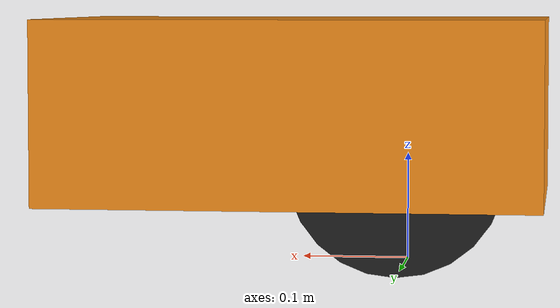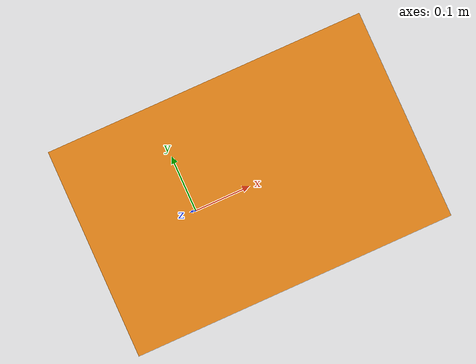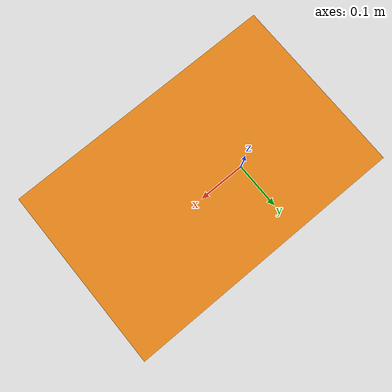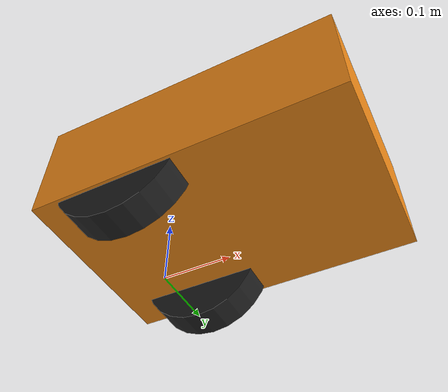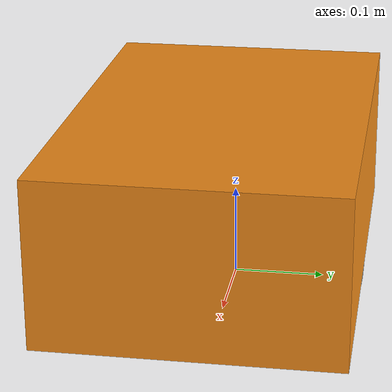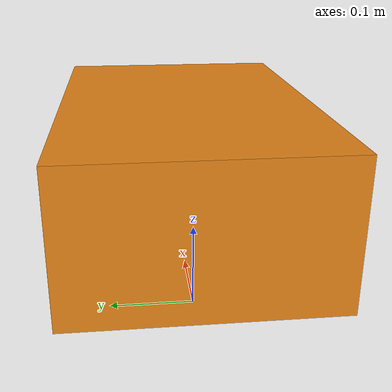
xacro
<?xml version="1.0"?>
<robot xmlns:xacro="http://www.ros.org/wiki/xacro" name="diffdrive_robot">
  <xacro:arg name="use_sim" default="false" />
  <xacro:arg name="use_fake_hardware" default="false" />
  <xacro:arg name="fake_sensor_commands" default="false" />
  <xacro:arg name="prefix" default="" />

  <xacro:include filename="$(find rosbot_description)/urdf/rosbot.urdf.xacro" />
  <xacro:include filename="$(find rosbot_description)/gazebo/rosbot.gazebo.xacro" />
  <xacro:include filename="$(find rosbot_description)/gazebo/rosbot.materials.xacro" />
  <xacro:include filename="$(find rosbot_description)/ros2_control/rosbot_system.ros2_control.xacro" />

  <xacro:rosbot prefix="$(arg prefix)" />
  <xacro:rosbot_gazebo prefix="$(arg prefix)" />
  <xacro:rosbot_system name="RosbotSystem" prefix="$(arg prefix)" use_fake_hardware="$(arg use_fake_hardware)" fake_sensor_commands="$(arg fake_sensor_commands)"/>

</robot>

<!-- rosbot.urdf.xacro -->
<!-- TODO add name here? -->
<robot xmlns:xacro="http://www.ros.org/wiki/xacro">

  <xacro:macro name="rosbot" params="prefix">

    <!-- Constants for robot dimensions -->
    <xacro:property name="PI" value="3.1415926535897931"/>
    <xacro:property name="base_mass" value="6.0" />

    <xacro:property name="body_width" value="0.46" />
    <xacro:property name="body_length" value="0.3" />
    <xacro:property name="body_height" value="0.17" />

    <xacro:property name="lidar_width" value="0.055" />
    <xacro:property name="lidar_length" value="0.055" />
    <xacro:property name="lidar_height" value="0.055" />

    <xacro:property name="wheel_mass" value="0.5" />
    <!-- arbitrary value for wheel mass -->
    <xacro:property name="wheel_len" value="0.05" />
    <xacro:property name="wheel_radius" value="0.0975" />

    <xacro:property name="frame_ground_offset" value="0.0575" />

    <xacro:property name="rear_wheel_ground_offset" value="0.0975" />
    <xacro:property name="rear_wheels_axis_offset" value="0.1" />
    <xacro:property name="rear_wheels_distance" value="0.241" />
    <!-- Space btw top of beam and the each joint -->

    <!-- robot is 300mm wide, 460mm long, 170mm tall -->
    <!-- front wheels are 38.5mm off the ground surface -->
    <!-- robot body is 57.5mm off the ground surface -->
    <!-- robot rear wheel diameter is 195mm (radius 97.5mm) -->
    <!-- robot rear wheels axis is 97.5mm off the ground surface -->
    <!-- robot rear wheels axis is 100mm from the center of the body -->
    <!-- front wheel radius 77mm  -->
    <!-- robot front wheels axis is -267.57mm from the center of the body -->
    <!-- small motor pulley has 16 teeth -->
    <!-- large wheel pulley has 72 teeth -->
    <!-- motor to wheel gear ratio is 72/16 = 4.5 -->

    <!-- base link -->
    <link name="${prefix}base_link">
      <collision>
        <origin xyz="${rear_wheels_axis_offset} 0 ${body_height/2 + frame_ground_offset}" rpy="0 0 0"/>
        <geometry>
          <box size="${body_width} ${body_length} ${body_height}"/>
        </geometry>
      </collision>

      <visual>
        <origin xyz="${rear_wheels_axis_offset} 0 ${body_height/2 + frame_ground_offset}" rpy="0 0 0"/>
        <geometry>
          <box size="${body_width} ${body_length} ${body_height}"/>
        </geometry>
        <material name="orange"/>
      </visual>

    </link>

    <!-- body -->

    <!-- left wheel -->
    <joint name="${prefix}left_wheel_joint" type="continuous">
      <parent link="${prefix}base_link"/>
      <child link="${prefix}left_wheel"/>
      <origin xyz="0 -${rear_wheels_distance/2} ${rear_wheel_ground_offset}" rpy="0 0 0"/>
      <axis xyz="0 1 0"/>
      <dynamics damping="0.2"/>
    </joint>
    <link name="${prefix}left_wheel">
      <collision>
        <origin xyz="0 0 0" rpy="${PI/2} 0 0"/>
        <geometry>
          <cylinder length="${wheel_len}" radius="${wheel_radius}"/>
        </geometry>
      </collision>

      <visual>
        <origin xyz="0 0 0" rpy="${PI/2} 0 0"/>
        <geometry>
          <cylinder length="${wheel_len}" radius="${wheel_radius}"/>
        </geometry>
        <material name="black"/>
      </visual>

      <inertial>
        <origin xyz="0 0 0" rpy="${PI/2} 0 0"/>
        <mass value="${wheel_mass}"/>
        <inertia ixx="${wheel_mass / 12.0 * (3*wheel_radius + wheel_len*wheel_len)}" ixy="0.0" ixz="0.0" iyy="${wheel_mass / 12.0 * wheel_radius*wheel_radius}" iyz="0.0" izz="${wheel_mass / 12.0 * wheel_radius*wheel_radius}"/>
      </inertial>
    </link>

    <!-- right wheel -->
    <joint name="${prefix}right_wheel_joint" type="continuous">
      <parent link="${prefix}base_link"/>
      <child link="${prefix}right_wheel"/>
      <origin xyz="0 ${rear_wheels_distance/2} ${rear_wheel_ground_offset}" rpy="0 0 0"/>
      <axis xyz="0 1 0"/>
      <dynamics damping="0.2"/>
    </joint>
    <link name="${prefix}right_wheel">
      <collision>
        <origin xyz="0 0 0" rpy="${PI/2} 0 0"/>
        <geometry>
          <cylinder length="${wheel_len}" radius="${wheel_radius}"/>
        </geometry>
      </collision>

      <visual>
        <origin xyz="0 0 0" rpy="${PI/2} 0 0"/>
        <geometry>
          <cylinder length="${wheel_len}" radius="${wheel_radius}"/>
        </geometry>
        <material name="black"/>
      </visual>

      <inertial>
        <origin xyz="0 0 0" rpy="${PI/2} 0 0"/>
        <mass value="${wheel_mass}"/>
        <inertia ixx="${wheel_mass / 12.0 * (3*wheel_radius + wheel_len*wheel_len)}" ixy="0.0" ixz="0.0" iyy="${wheel_mass / 12.0 * wheel_radius*wheel_radius}" iyz="0.0" izz="${wheel_mass / 12.0 * wheel_radius*wheel_radius}"/>
      </inertial>
    </link>

    <!-- lidar -->
    <joint name="${prefix}lidar_joint" type="fixed">
      <parent link="${prefix}base_link"/>
      <child link="${prefix}lidar"/>
      <origin xyz="0 0 ${body_height/2 + lidar_height/2}" rpy="0 0 0"/>
      <axis xyz="0 0 1"/>
    </joint>
    <link name="${prefix}lidar">
      <visual>
        <origin xyz="0 0 0" rpy="0 0 0"/>
        <geometry>
          <box size="${lidar_width} ${lidar_length} ${lidar_height}"/>
        </geometry>
        <material name="green"/>
      </visual>
    </link>

  </xacro:macro>

</robot>
